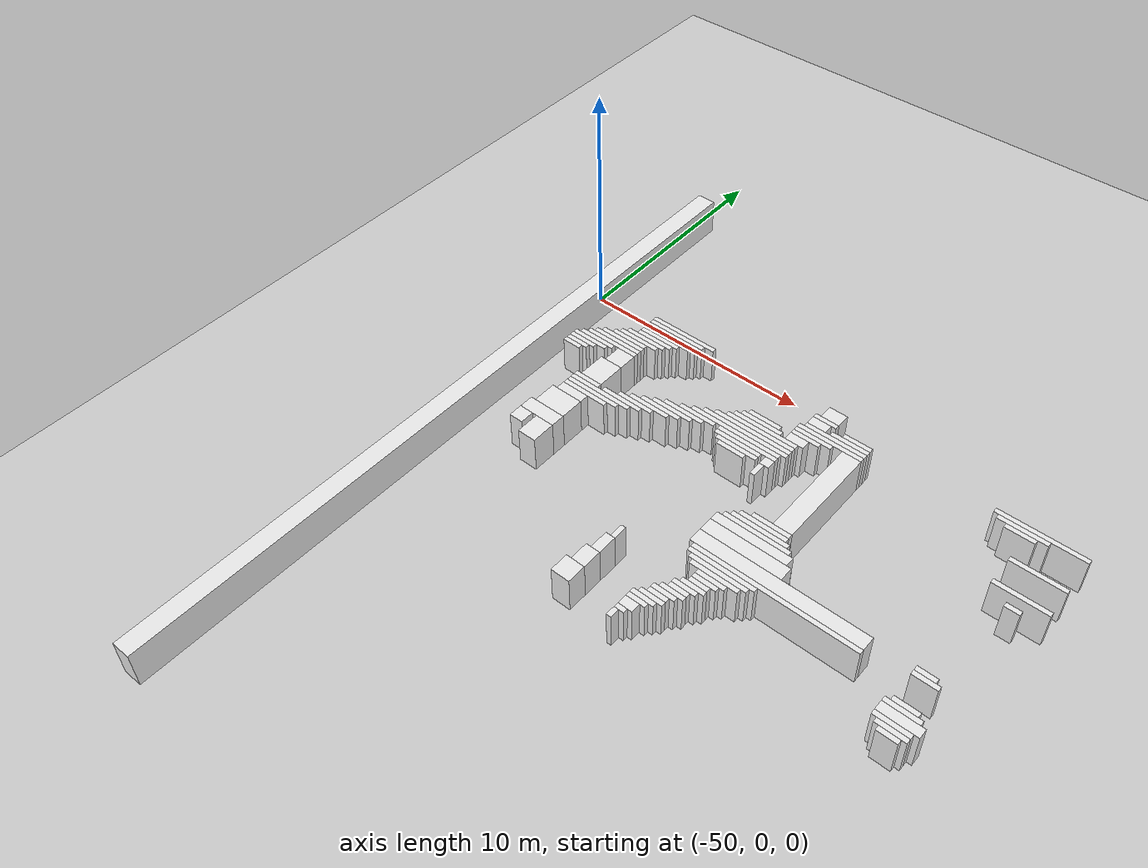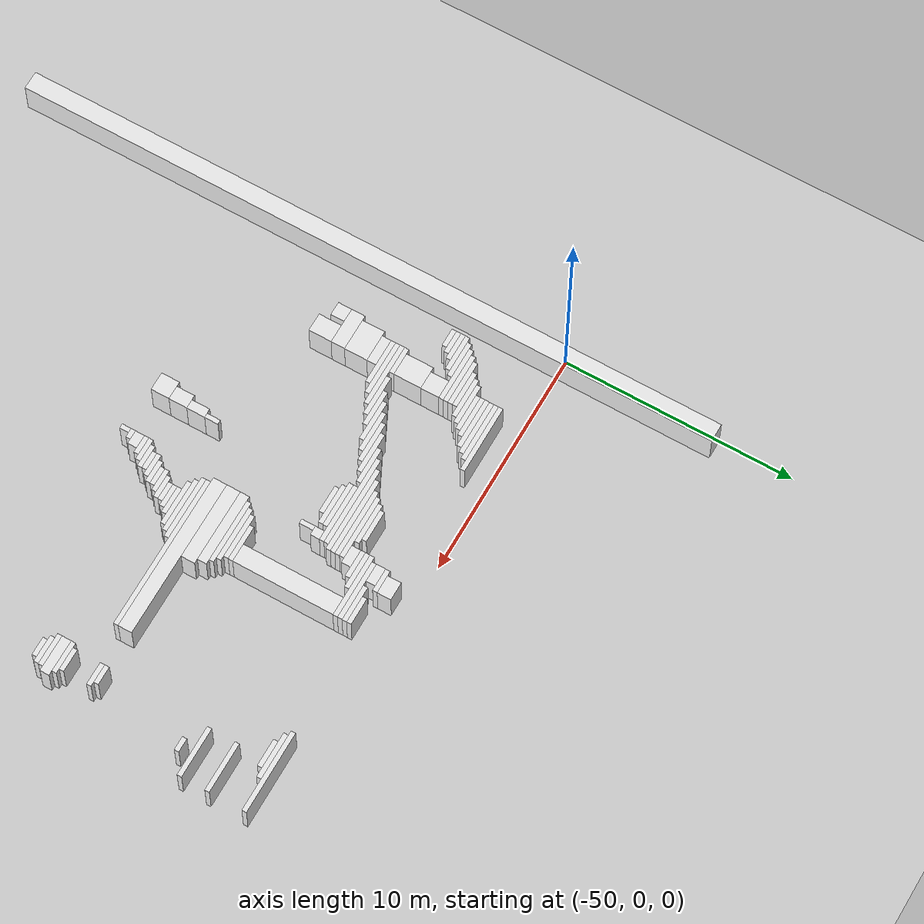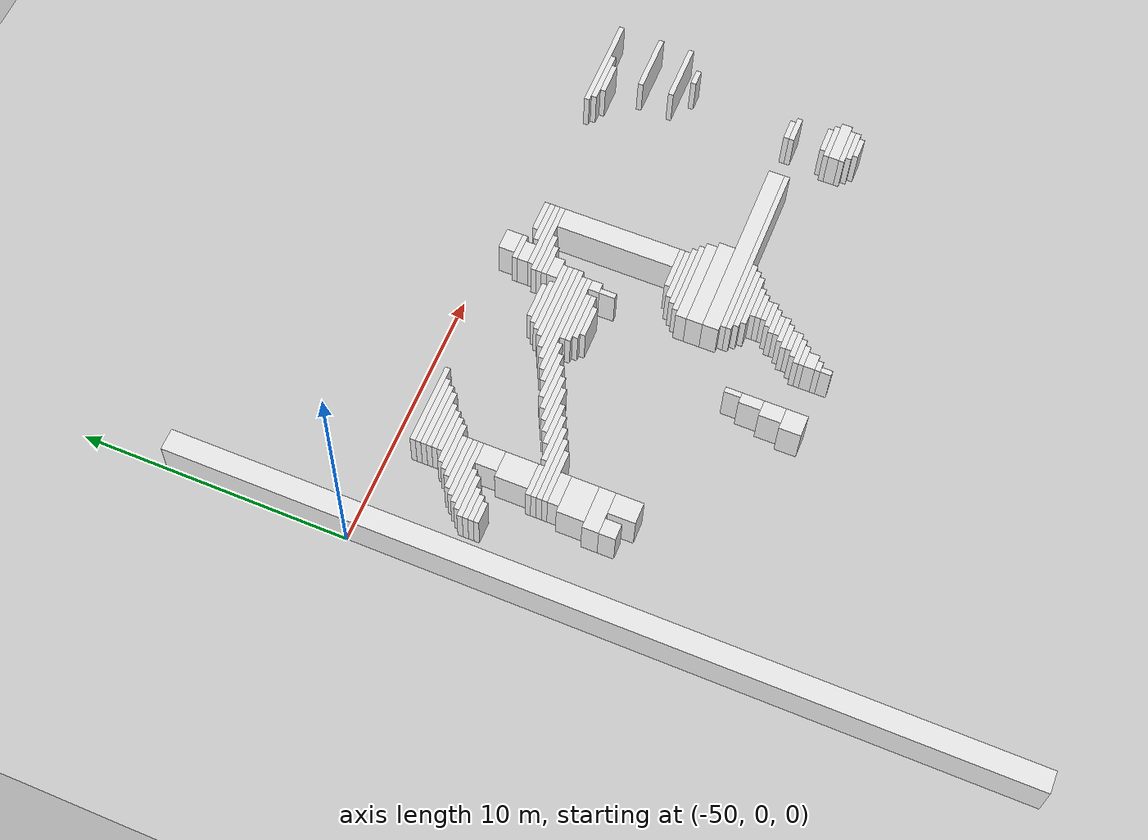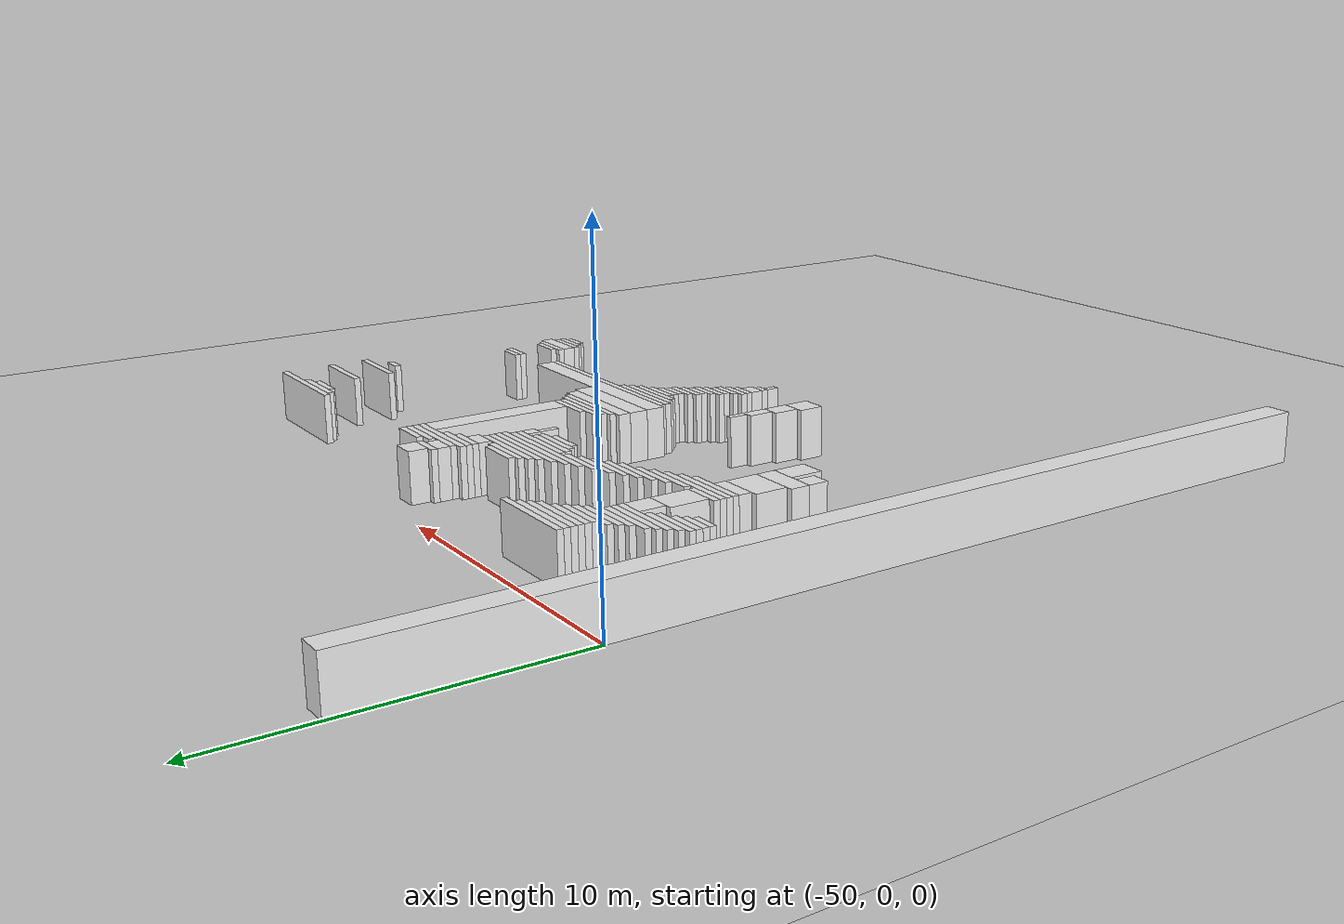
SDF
<sdf version="1.7">
 <world name="default">
  <model name="ground_plane">
   <static>1</static>
   <link name="link">
    <collision name="collision">
     <geometry><plane><normal>0 0 1</normal><size>120 120</size></plane></geometry>
    </collision>
    <visual name="visual">
     <geometry><plane><normal>0 0 1</normal><size>120 120</size></plane></geometry>
     <material>
      <script><uri>file://media/materials/scripts/gazebo.material</uri><name>Gazebo/Grey</name></script>
     </material>
    </visual>
   </link>
  </model>
  <model name="random_complex_01_model">
   <static>1</static>
   <link name="obs_1876">
    <pose>-44.9000 -0.9000 0.8000 0 0 0</pose>
    <collision name="obs_1876_col"><geometry><box><size>3.0000 0.2000 1.6000</size></box></geometry></collision>
    <visual name="obs_1876_vis">
     <geometry><box><size>3.0000 0.2000 1.6000</size></box></geometry>
     <material>
      <script><uri>file://media/materials/scripts/gazebo.material</uri><name>Gazebo/White</name></script>
     </material>
    </visual>
   </link>
   <link name="obs_1881">
    <pose>-37.8000 -0.9000 0.8000 0 0 0</pose>
    <collision name="obs_1881_col"><geometry><box><size>0.8000 0.6000 1.6000</size></box></geometry></collision>
    <visual name="obs_1881_vis">
     <geometry><box><size>0.8000 0.6000 1.6000</size></box></geometry>
     <material>
      <script><uri>file://media/materials/scripts/gazebo.material</uri><name>Gazebo/White</name></script>
     </material>
    </visual>
   </link>
   <link name="obs_1884">
    <pose>-45.1000 -1.1000 0.8000 0 0 0</pose>
    <collision name="obs_1884_col"><geometry><box><size>2.6000 0.2000 1.6000</size></box></geometry></collision>
    <visual name="obs_1884_vis">
     <geometry><box><size>2.6000 0.2000 1.6000</size></box></geometry>
     <material>
      <script><uri>file://media/materials/scripts/gazebo.material</uri><name>Gazebo/White</name></script>
     </material>
    </visual>
   </link>
   <link name="obs_1885">
    <pose>-29.2000 -1.1000 0.8000 0 0 0</pose>
    <collision name="obs_1885_col"><geometry><box><size>3.6000 0.2000 1.6000</size></box></geometry></collision>
    <visual name="obs_1885_vis">
     <geometry><box><size>3.6000 0.2000 1.6000</size></box></geometry>
     <material>
      <script><uri>file://media/materials/scripts/gazebo.material</uri><name>Gazebo/White</name></script>
     </material>
    </visual>
   </link>
   <link name="obs_1889">
    <pose>-45.2000 -1.3000 0.8000 0 0 0</pose>
    <collision name="obs_1889_col"><geometry><box><size>2.4000 0.2000 1.6000</size></box></geometry></collision>
    <visual name="obs_1889_vis">
     <geometry><box><size>2.4000 0.2000 1.6000</size></box></geometry>
     <material>
      <script><uri>file://media/materials/scripts/gazebo.material</uri><name>Gazebo/White</name></script>
     </material>
    </visual>
   </link>
   <link name="obs_1890">
    <pose>-37.9000 -1.3000 0.8000 0 0 0</pose>
    <collision name="obs_1890_col"><geometry><box><size>1.0000 0.2000 1.6000</size></box></geometry></collision>
    <visual name="obs_1890_vis">
     <geometry><box><size>1.0000 0.2000 1.6000</size></box></geometry>
     <material>
      <script><uri>file://media/materials/scripts/gazebo.material</uri><name>Gazebo/White</name></script>
     </material>
    </visual>
   </link>
   <link name="obs_1891">
    <pose>-29.8000 -1.3000 0.8000 0 0 0</pose>
    <collision name="obs_1891_col"><geometry><box><size>2.0000 0.2000 1.6000</size></box></geometry></collision>
    <visual name="obs_1891_vis">
     <geometry><box><size>2.0000 0.2000 1.6000</size></box></geometry>
     <material>
      <script><uri>file://media/materials/scripts/gazebo.material</uri><name>Gazebo/White</name></script>
     </material>
    </visual>
   </link>
   <link name="obs_1896">
    <pose>-45.3000 -1.5000 0.8000 0 0 0</pose>
    <collision name="obs_1896_col"><geometry><box><size>2.2000 0.2000 1.6000</size></box></geometry></collision>
    <visual name="obs_1896_vis">
     <geometry><box><size>2.2000 0.2000 1.6000</size></box></geometry>
     <material>
      <script><uri>file://media/materials/scripts/gazebo.material</uri><name>Gazebo/White</name></script>
     </material>
    </visual>
   </link>
   <link name="obs_1897">
    <pose>-36.4000 -1.5000 0.8000 0 0 0</pose>
    <collision name="obs_1897_col"><geometry><box><size>1.2000 0.2000 1.6000</size></box></geometry></collision>
    <visual name="obs_1897_vis">
     <geometry><box><size>1.2000 0.2000 1.6000</size></box></geometry>
     <material>
      <script><uri>file://media/materials/scripts/gazebo.material</uri><name>Gazebo/White</name></script>
     </material>
    </visual>
   </link>
   <link name="obs_1898">
    <pose>-29.8000 -1.5000 0.8000 0 0 0</pose>
    <collision name="obs_1898_col"><geometry><box><size>1.2000 0.2000 1.6000</size></box></geometry></collision>
    <visual name="obs_1898_vis">
     <geometry><box><size>1.2000 0.2000 1.6000</size></box></geometry>
     <material>
      <script><uri>file://media/materials/scripts/gazebo.material</uri><name>Gazebo/White</name></script>
     </material>
    </visual>
   </link>
   <link name="obs_1901">
    <pose>-38.0000 -1.6000 0.8000 0 0 0</pose>
    <collision name="obs_1901_col"><geometry><box><size>0.8000 0.4000 1.6000</size></box></geometry></collision>
    <visual name="obs_1901_vis">
     <geometry><box><size>0.8000 0.4000 1.6000</size></box></geometry>
     <material>
      <script><uri>file://media/materials/scripts/gazebo.material</uri><name>Gazebo/White</name></script>
     </material>
    </visual>
   </link>
   <link name="obs_1903">
    <pose>-45.5000 -1.7000 0.8000 0 0 0</pose>
    <collision name="obs_1903_col"><geometry><box><size>1.8000 0.2000 1.6000</size></box></geometry></collision>
    <visual name="obs_1903_vis">
     <geometry><box><size>1.8000 0.2000 1.6000</size></box></geometry>
     <material>
      <script><uri>file://media/materials/scripts/gazebo.material</uri><name>Gazebo/White</name></script>
     </material>
    </visual>
   </link>
   <link name="obs_1904">
    <pose>-36.6000 -1.7000 0.8000 0 0 0</pose>
    <collision name="obs_1904_col"><geometry><box><size>1.6000 0.2000 1.6000</size></box></geometry></collision>
    <visual name="obs_1904_vis">
     <geometry><box><size>1.6000 0.2000 1.6000</size></box></geometry>
     <material>
      <script><uri>file://media/materials/scripts/gazebo.material</uri><name>Gazebo/White</name></script>
     </material>
    </visual>
   </link>
   <link name="obs_1908">
    <pose>-45.6000 -1.9000 0.8000 0 0 0</pose>
    <collision name="obs_1908_col"><geometry><box><size>1.6000 0.2000 1.6000</size></box></geometry></collision>
    <visual name="obs_1908_vis">
     <geometry><box><size>1.6000 0.2000 1.6000</size></box></geometry>
     <material>
      <script><uri>file://media/materials/scripts/gazebo.material</uri><name>Gazebo/White</name></script>
     </material>
    </visual>
   </link>
   <link name="obs_1909">
    <pose>-37.1000 -1.9000 0.8000 0 0 0</pose>
    <collision name="obs_1909_col"><geometry><box><size>2.6000 0.2000 1.6000</size></box></geometry></collision>
    <visual name="obs_1909_vis">
     <geometry><box><size>2.6000 0.2000 1.6000</size></box></geometry>
     <material>
      <script><uri>file://media/materials/scripts/gazebo.material</uri><name>Gazebo/White</name></script>
     </material>
    </visual>
   </link>
   <link name="obs_1914">
    <pose>-45.9000 -2.1000 0.8000 0 0 0</pose>
    <collision name="obs_1914_col"><geometry><box><size>1.8000 0.2000 1.6000</size></box></geometry></collision>
    <visual name="obs_1914_vis">
     <geometry><box><size>1.8000 0.2000 1.6000</size></box></geometry>
     <material>
      <script><uri>file://media/materials/scripts/gazebo.material</uri><name>Gazebo/White</name></script>
     </material>
    </visual>
   </link>
   <link name="obs_1915">
    <pose>-37.2000 -2.1000 0.8000 0 0 0</pose>
    <collision name="obs_1915_col"><geometry><box><size>2.8000 0.2000 1.6000</size></box></geometry></collision>
    <visual name="obs_1915_vis">
     <geometry><box><size>2.8000 0.2000 1.6000</size></box></geometry>
     <material>
      <script><uri>file://media/materials/scripts/gazebo.material</uri><name>Gazebo/White</name></script>
     </material>
    </visual>
   </link>
   <link name="obs_1921">
    <pose>-46.1000 -2.3000 0.8000 0 0 0</pose>
    <collision name="obs_1921_col"><geometry><box><size>1.8000 0.2000 1.6000</size></box></geometry></collision>
    <visual name="obs_1921_vis">
     <geometry><box><size>1.8000 0.2000 1.6000</size></box></geometry>
     <material>
      <script><uri>file://media/materials/scripts/gazebo.material</uri><name>Gazebo/White</name></script>
     </material>
    </visual>
   </link>
   <link name="obs_1922">
    <pose>-37.8000 -2.3000 0.8000 0 0 0</pose>
    <collision name="obs_1922_col"><geometry><box><size>1.6000 0.2000 1.6000</size></box></geometry></collision>
    <visual name="obs_1922_vis">
     <geometry><box><size>1.6000 0.2000 1.6000</size></box></geometry>
     <material>
      <script><uri>file://media/materials/scripts/gazebo.material</uri><name>Gazebo/White</name></script>
     </material>
    </visual>
   </link>
   <link name="obs_1930">
    <pose>-46.4000 -2.5000 0.8000 0 0 0</pose>
    <collision name="obs_1930_col"><geometry><box><size>1.6000 0.2000 1.6000</size></box></geometry></collision>
    <visual name="obs_1930_vis">
     <geometry><box><size>1.6000 0.2000 1.6000</size></box></geometry>
     <material>
      <script><uri>file://media/materials/scripts/gazebo.material</uri><name>Gazebo/White</name></script>
     </material>
    </visual>
   </link>
   <link name="obs_1931">
    <pose>-38.0000 -2.5000 0.8000 0 0 0</pose>
    <collision name="obs_1931_col"><geometry><box><size>1.2000 0.2000 1.6000</size></box></geometry></collision>
    <visual name="obs_1931_vis">
     <geometry><box><size>1.2000 0.2000 1.6000</size></box></geometry>
     <material>
      <script><uri>file://media/materials/scripts/gazebo.material</uri><name>Gazebo/White</name></script>
     </material>
    </visual>
   </link>
   <link name="obs_1937">
    <pose>-46.6000 -2.7000 0.8000 0 0 0</pose>
    <collision name="obs_1937_col"><geometry><box><size>2.0000 0.2000 1.6000</size></box></geometry></collision>
    <visual name="obs_1937_vis">
     <geometry><box><size>2.0000 0.2000 1.6000</size></box></geometry>
     <material>
      <script><uri>file://media/materials/scripts/gazebo.material</uri><name>Gazebo/White</name></script>
     </material>
    </visual>
   </link>
   <link name="obs_1938">
    <pose>-39.7000 -2.7000 0.8000 0 0 0</pose>
    <collision name="obs_1938_col"><geometry><box><size>1.4000 0.2000 1.6000</size></box></geometry></collision>
    <visual name="obs_1938_vis">
     <geometry><box><size>1.4000 0.2000 1.6000</size></box></geometry>
     <material>
      <script><uri>file://media/materials/scripts/gazebo.material</uri><name>Gazebo/White</name></script>
     </material>
    </visual>
   </link>
   <link name="obs_1939">
    <pose>-28.5000 -2.7000 0.8000 0 0 0</pose>
    <collision name="obs_1939_col"><geometry><box><size>2.2000 0.2000 1.6000</size></box></geometry></collision>
    <visual name="obs_1939_vis">
     <geometry><box><size>2.2000 0.2000 1.6000</size></box></geometry>
     <material>
      <script><uri>file://media/materials/scripts/gazebo.material</uri><name>Gazebo/White</name></script>
     </material>
    </visual>
   </link>
   <link name="obs_1945">
    <pose>-38.2000 -2.8000 0.8000 0 0 0</pose>
    <collision name="obs_1945_col"><geometry><box><size>0.8000 0.4000 1.6000</size></box></geometry></collision>
    <visual name="obs_1945_vis">
     <geometry><box><size>0.8000 0.4000 1.6000</size></box></geometry>
     <material>
      <script><uri>file://media/materials/scripts/gazebo.material</uri><name>Gazebo/White</name></script>
     </material>
    </visual>
   </link>
   <link name="obs_1947">
    <pose>-46.7000 -2.9000 0.8000 0 0 0</pose>
    <collision name="obs_1947_col"><geometry><box><size>2.2000 0.2000 1.6000</size></box></geometry></collision>
    <visual name="obs_1947_vis">
     <geometry><box><size>2.2000 0.2000 1.6000</size></box></geometry>
     <material>
      <script><uri>file://media/materials/scripts/gazebo.material</uri><name>Gazebo/White</name></script>
     </material>
    </visual>
   </link>
   <link name="obs_1948">
    <pose>-39.7000 -2.9000 0.8000 0 0 0</pose>
    <collision name="obs_1948_col"><geometry><box><size>1.8000 0.2000 1.6000</size></box></geometry></collision>
    <visual name="obs_1948_vis">
     <geometry><box><size>1.8000 0.2000 1.6000</size></box></geometry>
     <material>
      <script><uri>file://media/materials/scripts/gazebo.material</uri><name>Gazebo/White</name></script>
     </material>
    </visual>
   </link>
   <link name="obs_1956">
    <pose>-46.8000 -3.1000 0.8000 0 0 0</pose>
    <collision name="obs_1956_col"><geometry><box><size>2.4000 0.2000 1.6000</size></box></geometry></collision>
    <visual name="obs_1956_vis">
     <geometry><box><size>2.4000 0.2000 1.6000</size></box></geometry>
     <material>
      <script><uri>file://media/materials/scripts/gazebo.material</uri><name>Gazebo/White</name></script>
     </material>
    </visual>
   </link>
   <link name="obs_1957">
    <pose>-39.4000 -3.1000 0.8000 0 0 0</pose>
    <collision name="obs_1957_col"><geometry><box><size>2.8000 0.2000 1.6000</size></box></geometry></collision>
    <visual name="obs_1957_vis">
     <geometry><box><size>2.8000 0.2000 1.6000</size></box></geometry>
     <material>
      <script><uri>file://media/materials/scripts/gazebo.material</uri><name>Gazebo/White</name></script>
     </material>
    </visual>
   </link>
   <link name="obs_1962">
    <pose>-47.4000 -3.3000 0.8000 0 0 0</pose>
    <collision name="obs_1962_col"><geometry><box><size>1.6000 0.2000 1.6000</size></box></geometry></collision>
    <visual name="obs_1962_vis">
     <geometry><box><size>1.6000 0.2000 1.6000</size></box></geometry>
     <material>
      <script><uri>file://media/materials/scripts/gazebo.material</uri><name>Gazebo/White</name></script>
     </material>
    </visual>
   </link>
   <link name="obs_1963">
    <pose>-39.5000 -3.3000 0.8000 0 0 0</pose>
    <collision name="obs_1963_col"><geometry><box><size>3.0000 0.2000 1.6000</size></box></geometry></collision>
    <visual name="obs_1963_vis">
     <geometry><box><size>3.0000 0.2000 1.6000</size></box></geometry>
     <material>
      <script><uri>file://media/materials/scripts/gazebo.material</uri><name>Gazebo/White</name></script>
     </material>
    </visual>
   </link>
   <link name="obs_1970">
    <pose>-47.6000 -3.5000 0.8000 0 0 0</pose>
    <collision name="obs_1970_col"><geometry><box><size>1.6000 0.2000 1.6000</size></box></geometry></collision>
    <visual name="obs_1970_vis">
     <geometry><box><size>1.6000 0.2000 1.6000</size></box></geometry>
     <material>
      <script><uri>file://media/materials/scripts/gazebo.material</uri><name>Gazebo/White</name></script>
     </material>
    </visual>
   </link>
   <link name="obs_1971">
    <pose>-39.7000 -3.5000 0.8000 0 0 0</pose>
    <collision name="obs_1971_col"><geometry><box><size>3.4000 0.2000 1.6000</size></box></geometry></collision>
    <visual name="obs_1971_vis">
     <geometry><box><size>3.4000 0.2000 1.6000</size></box></geometry>
     <material>
      <script><uri>file://media/materials/scripts/gazebo.material</uri><name>Gazebo/White</name></script>
     </material>
    </visual>
   </link>
   <link name="obs_1977">
    <pose>-47.8000 -3.7000 0.8000 0 0 0</pose>
    <collision name="obs_1977_col"><geometry><box><size>1.2000 0.2000 1.6000</size></box></geometry></collision>
    <visual name="obs_1977_vis">
     <geometry><box><size>1.2000 0.2000 1.6000</size></box></geometry>
     <material>
      <script><uri>file://media/materials/scripts/gazebo.material</uri><name>Gazebo/White</name></script>
     </material>
    </visual>
   </link>
   <link name="obs_1978">
    <pose>-39.9000 -3.7000 0.8000 0 0 0</pose>
    <collision name="obs_1978_col"><geometry><box><size>3.8000 0.2000 1.6000</size></box></geometry></collision>
    <visual name="obs_1978_vis">
     <geometry><box><size>3.8000 0.2000 1.6000</size></box></geometry>
     <material>
      <script><uri>file://media/materials/scripts/gazebo.material</uri><name>Gazebo/White</name></script>
     </material>
    </visual>
   </link>
   <link name="obs_1984">
    <pose>-46.0000 -3.6000 0.8000 0 0 0</pose>
    <collision name="obs_1984_col"><geometry><box><size>0.8000 0.8000 1.6000</size></box></geometry></collision>
    <visual name="obs_1984_vis">
     <geometry><box><size>0.8000 0.8000 1.6000</size></box></geometry>
     <material>
      <script><uri>file://media/materials/scripts/gazebo.material</uri><name>Gazebo/White</name></script>
     </material>
    </visual>
   </link>
   <link name="obs_1986">
    <pose>-47.9000 -3.9000 0.8000 0 0 0</pose>
    <collision name="obs_1986_col"><geometry><box><size>1.0000 0.2000 1.6000</size></box></geometry></collision>
    <visual name="obs_1986_vis">
     <geometry><box><size>1.0000 0.2000 1.6000</size></box></geometry>
     <material>
      <script><uri>file://media/materials/scripts/gazebo.material</uri><name>Gazebo/White</name></script>
     </material>
    </visual>
   </link>
   <link name="obs_1987">
    <pose>-40.2000 -3.9000 0.8000 0 0 0</pose>
    <collision name="obs_1987_col"><geometry><box><size>4.0000 0.2000 1.6000</size></box></geometry></collision>
    <visual name="obs_1987_vis">
     <geometry><box><size>4.0000 0.2000 1.6000</size></box></geometry>
     <material>
      <script><uri>file://media/materials/scripts/gazebo.material</uri><name>Gazebo/White</name></script>
     </material>
    </visual>
   </link>
   <link name="obs_1988">
    <pose>-28.5000 -3.9000 0.8000 0 0 0</pose>
    <collision name="obs_1988_col"><geometry><box><size>2.2000 0.2000 1.6000</size></box></geometry></collision>
    <visual name="obs_1988_vis">
     <geometry><box><size>2.2000 0.2000 1.6000</size></box></geometry>
     <material>
      <script><uri>file://media/materials/scripts/gazebo.material</uri><name>Gazebo/White</name></script>
     </material>
    </visual>
   </link>
   <link name="obs_1994">
    <pose>-48.0000 -4.1000 0.8000 0 0 0</pose>
    <collision name="obs_1994_col"><geometry><box><size>0.8000 0.2000 1.6000</size></box></geometry></collision>
    <visual name="obs_1994_vis">
     <geometry><box><size>0.8000 0.2000 1.6000</size></box></geometry>
     <material>
      <script><uri>file://media/materials/scripts/gazebo.material</uri><name>Gazebo/White</name></script>
     </material>
    </visual>
   </link>
   <link name="obs_1995">
    <pose>-41.8000 -4.1000 0.8000 0 0 0</pose>
    <collision name="obs_1995_col"><geometry><box><size>1.6000 0.2000 1.6000</size></box></geometry></collision>
    <visual name="obs_1995_vis">
     <geometry><box><size>1.6000 0.2000 1.6000</size></box></geometry>
     <material>
      <script><uri>file://media/materials/scripts/gazebo.material</uri><name>Gazebo/White</name></script>
     </material>
    </visual>
   </link>
   <link name="obs_1996">
    <pose>-39.5000 -4.1000 0.8000 0 0 0</pose>
    <collision name="obs_1996_col"><geometry><box><size>2.6000 0.2000 1.6000</size></box></geometry></collision>
    <visual name="obs_1996_vis">
     <geometry><box><size>2.6000 0.2000 1.6000</size></box></geometry>
     <material>
      <script><uri>file://media/materials/scripts/gazebo.material</uri><name>Gazebo/White</name></script>
     </material>
    </visual>
   </link>
   <link name="obs_2006">
    <pose>-42.3000 -4.3000 0.8000 0 0 0</pose>
    <collision name="obs_2006_col"><geometry><box><size>1.8000 0.2000 1.6000</size></box></geometry></collision>
    <visual name="obs_2006_vis">
     <geometry><box><size>1.8000 0.2000 1.6000</size></box></geometry>
     <material>
      <script><uri>file://media/materials/scripts/gazebo.material</uri><name>Gazebo/White</name></script>
     </material>
    </visual>
   </link>
   <link name="obs_2007">
    <pose>-39.8000 -4.3000 0.8000 0 0 0</pose>
    <collision name="obs_2007_col"><geometry><box><size>2.0000 0.2000 1.6000</size></box></geometry></collision>
    <visual name="obs_2007_vis">
     <geometry><box><size>2.0000 0.2000 1.6000</size></box></geometry>
     <material>
      <script><uri>file://media/materials/scripts/gazebo.material</uri><name>Gazebo/White</name></script>
     </material>
    </visual>
   </link>
   <link name="obs_2015">
    <pose>-38.4000 -4.4000 0.8000 0 0 0</pose>
    <collision name="obs_2015_col"><geometry><box><size>0.4000 0.4000 1.6000</size></box></geometry></collision>
    <visual name="obs_2015_vis">
     <geometry><box><size>0.4000 0.4000 1.6000</size></box></geometry>
     <material>
      <script><uri>file://media/materials/scripts/gazebo.material</uri><name>Gazebo/White</name></script>
     </material>
    </visual>
   </link>
   <link name="obs_2016">
    <pose>-42.7000 -4.5000 0.8000 0 0 0</pose>
    <collision name="obs_2016_col"><geometry><box><size>1.8000 0.2000 1.6000</size></box></geometry></collision>
    <visual name="obs_2016_vis">
     <geometry><box><size>1.8000 0.2000 1.6000</size></box></geometry>
     <material>
      <script><uri>file://media/materials/scripts/gazebo.material</uri><name>Gazebo/White</name></script>
     </material>
    </visual>
   </link>
   <link name="obs_2017">
    <pose>-39.7000 -4.5000 0.8000 0 0 0</pose>
    <collision name="obs_2017_col"><geometry><box><size>1.8000 0.2000 1.6000</size></box></geometry></collision>
    <visual name="obs_2017_vis">
     <geometry><box><size>1.8000 0.2000 1.6000</size></box></geometry>
     <material>
      <script><uri>file://media/materials/scripts/gazebo.material</uri><name>Gazebo/White</name></script>
     </material>
    </visual>
   </link>
   <link name="obs_2018">
    <pose>-28.5000 -4.5000 0.8000 0 0 0</pose>
    <collision name="obs_2018_col"><geometry><box><size>0.6000 0.2000 1.6000</size></box></geometry></collision>
    <visual name="obs_2018_vis">
     <geometry><box><size>0.6000 0.2000 1.6000</size></box></geometry>
     <material>
      <script><uri>file://media/materials/scripts/gazebo.material</uri><name>Gazebo/White</name></script>
     </material>
    </visual>
   </link>
   <link name="obs_2028">
    <pose>-43.1000 -4.7000 0.8000 0 0 0</pose>
    <collision name="obs_2028_col"><geometry><box><size>1.8000 0.2000 1.6000</size></box></geometry></collision>
    <visual name="obs_2028_vis">
     <geometry><box><size>1.8000 0.2000 1.6000</size></box></geometry>
     <material>
      <script><uri>file://media/materials/scripts/gazebo.material</uri><name>Gazebo/White</name></script>
     </material>
    </visual>
   </link>
   <link name="obs_2029">
    <pose>-39.8000 -4.7000 0.8000 0 0 0</pose>
    <collision name="obs_2029_col"><geometry><box><size>1.2000 0.2000 1.6000</size></box></geometry></collision>
    <visual name="obs_2029_vis">
     <geometry><box><size>1.2000 0.2000 1.6000</size></box></geometry>
     <material>
      <script><uri>file://media/materials/scripts/gazebo.material</uri><name>Gazebo/White</name></script>
     </material>
    </visual>
   </link>
   <link name="obs_2036">
    <pose>-43.5000 -4.9000 0.8000 0 0 0</pose>
    <collision name="obs_2036_col"><geometry><box><size>1.8000 0.2000 1.6000</size></box></geometry></collision>
    <visual name="obs_2036_vis">
     <geometry><box><size>1.8000 0.2000 1.6000</size></box></geometry>
     <material>
      <script><uri>file://media/materials/scripts/gazebo.material</uri><name>Gazebo/White</name></script>
     </material>
    </visual>
   </link>
   <link name="obs_2042">
    <pose>-46.1000 -4.6000 0.8000 0 0 0</pose>
    <collision name="obs_2042_col"><geometry><box><size>1.0000 1.2000 1.6000</size></box></geometry></collision>
    <visual name="obs_2042_vis">
     <geometry><box><size>1.0000 1.2000 1.6000</size></box></geometry>
     <material>
      <script><uri>file://media/materials/scripts/gazebo.material</uri><name>Gazebo/White</name></script>
     </material>
    </visual>
   </link>
   <link name="obs_2043">
    <pose>-38.5000 -4.9000 0.8000 0 0 0</pose>
    <collision name="obs_2043_col"><geometry><box><size>0.2000 0.6000 1.6000</size></box></geometry></collision>
    <visual name="obs_2043_vis">
     <geometry><box><size>0.2000 0.6000 1.6000</size></box></geometry>
     <material>
      <script><uri>file://media/materials/scripts/gazebo.material</uri><name>Gazebo/White</name></script>
     </material>
    </visual>
   </link>
   <link name="obs_2045">
    <pose>-44.0000 -5.1000 0.8000 0 0 0</pose>
    <collision name="obs_2045_col"><geometry><box><size>1.6000 0.2000 1.6000</size></box></geometry></collision>
    <visual name="obs_2045_vis">
     <geometry><box><size>1.6000 0.2000 1.6000</size></box></geometry>
     <material>
      <script><uri>file://media/materials/scripts/gazebo.material</uri><name>Gazebo/White</name></script>
     </material>
    </visual>
   </link>
   <link name="obs_2050">
    <pose>-46.2000 -5.3000 0.8000 0 0 0</pose>
    <collision name="obs_2050_col"><geometry><box><size>1.2000 0.2000 1.6000</size></box></geometry></collision>
    <visual name="obs_2050_vis">
     <geometry><box><size>1.2000 0.2000 1.6000</size></box></geometry>
     <material>
      <script><uri>file://media/materials/scripts/gazebo.material</uri><name>Gazebo/White</name></script>
     </material>
    </visual>
   </link>
   <link name="obs_2051">
    <pose>-44.5000 -5.3000 0.8000 0 0 0</pose>
    <collision name="obs_2051_col"><geometry><box><size>1.8000 0.2000 1.6000</size></box></geometry></collision>
    <visual name="obs_2051_vis">
     <geometry><box><size>1.8000 0.2000 1.6000</size></box></geometry>
     <material>
      <script><uri>file://media/materials/scripts/gazebo.material</uri><name>Gazebo/White</name></script>
     </material>
    </visual>
   </link>
   <link name="obs_2057">
    <pose>-45.4000 -5.5000 0.8000 0 0 0</pose>
    <collision name="obs_2057_col"><geometry><box><size>2.8000 0.2000 1.6000</size></box></geometry></collision>
    <visual name="obs_2057_vis">
     <geometry><box><size>2.8000 0.2000 1.6000</size></box></geometry>
     <material>
      <script><uri>file://media/materials/scripts/gazebo.material</uri><name>Gazebo/White</name></script>
     </material>
    </visual>
   </link>
   <link name="obs_2064">
    <pose>-45.6000 -5.7000 0.8000 0 0 0</pose>
    <collision name="obs_2064_col"><geometry><box><size>2.4000 0.2000 1.6000</size></box></geometry></collision>
    <visual name="obs_2064_vis">
     <geometry><box><size>2.4000 0.2000 1.6000</size></box></geometry>
     <material>
      <script><uri>file://media/materials/scripts/gazebo.material</uri><name>Gazebo/White</name></script>
     </material>
    </visual>
   </link>
   <link name="obs_2071">
    <pose>-45.8000 -5.9000 0.8000 0 0 0</pose>
    <collision name="obs_2071_col"><geometry><box><size>2.0000 0.2000 1.6000</size></box></geometry></collision>
    <visual name="obs_2071_vis">
     <geometry><box><size>2.0000 0.2000 1.6000</size></box></geometry>
     <material>
      <script><uri>file://media/materials/scripts/gazebo.material</uri><name>Gazebo/White</name></script>
     </material>
    </visual>
   </link>
   <link name="obs_2085">
    <pose>-46.2000 -6.2000 0.8000 0 0 0</pose>
    <collision name="obs_2085_col"><geometry><box><size>1.2000 0.4000 1.6000</size></box></geometry></collision>
    <visual name="obs_2085_vis">
     <geometry><box><size>1.2000 0.4000 1.6000</size></box></geometry>
     <material>
      <script><uri>file://media/materials/scripts/gazebo.material</uri><name>Gazebo/White</name></script>
     </material>
    </visual>
   </link>
   <link name="obs_2091">
    <pose>-36.2000 -4.4000 0.8000 0 0 0</pose>
    <collision name="obs_2091_col"><geometry><box><size>0.8000 4.4000 1.6000</size></box></geometry></collision>
    <visual name="obs_2091_vis">
     <geometry><box><size>0.8000 4.4000 1.6000</size></box></geometry>
     <material>
      <script><uri>file://media/materials/scripts/gazebo.material</uri><name>Gazebo/White</name></script>
     </material>
    </visual>
   </link>
   <link name="obs_2101">
    <pose>-36.6000 -6.7000 0.8000 0 0 0</pose>
    <collision name="obs_2101_col"><geometry><box><size>1.6000 0.2000 1.6000</size></box></geometry></collision>
    <visual name="obs_2101_vis">
     <geometry><box><size>1.6000 0.2000 1.6000</size></box></geometry>
     <material>
      <script><uri>file://media/materials/scripts/gazebo.material</uri><name>Gazebo/White</name></script>
     </material>
    </visual>
   </link>
   <link name="obs_2109">
    <pose>-36.8000 -6.9000 0.8000 0 0 0</pose>
    <collision name="obs_2109_col"><geometry><box><size>2.0000 0.2000 1.6000</size></box></geometry></collision>
    <visual name="obs_2109_vis">
     <geometry><box><size>2.0000 0.2000 1.6000</size></box></geometry>
     <material>
      <script><uri>file://media/materials/scripts/gazebo.material</uri><name>Gazebo/White</name></script>
     </material>
    </visual>
   </link>
   <link name="obs_2119">
    <pose>-36.8000 -7.1000 0.8000 0 0 0</pose>
    <collision name="obs_2119_col"><geometry><box><size>2.4000 0.2000 1.6000</size></box></geometry></collision>
    <visual name="obs_2119_vis">
     <geometry><box><size>2.4000 0.2000 1.6000</size></box></geometry>
     <material>
      <script><uri>file://media/materials/scripts/gazebo.material</uri><name>Gazebo/White</name></script>
     </material>
    </visual>
   </link>
   <link name="obs_2126">
    <pose>-46.3000 -6.9000 0.8000 0 0 0</pose>
    <collision name="obs_2126_col"><geometry><box><size>1.4000 1.0000 1.6000</size></box></geometry></collision>
    <visual name="obs_2126_vis">
     <geometry><box><size>1.4000 1.0000 1.6000</size></box></geometry>
     <material>
      <script><uri>file://media/materials/scripts/gazebo.material</uri><name>Gazebo/White</name></script>
     </material>
    </visual>
   </link>
   <link name="obs_2128">
    <pose>-36.8000 -7.3000 0.8000 0 0 0</pose>
    <collision name="obs_2128_col"><geometry><box><size>2.8000 0.2000 1.6000</size></box></geometry></collision>
    <visual name="obs_2128_vis">
     <geometry><box><size>2.8000 0.2000 1.6000</size></box></geometry>
     <material>
      <script><uri>file://media/materials/scripts/gazebo.material</uri><name>Gazebo/White</name></script>
     </material>
    </visual>
   </link>
   <link name="obs_2143">
    <pose>-36.8000 -7.6000 0.8000 0 0 0</pose>
    <collision name="obs_2143_col"><geometry><box><size>3.2000 0.4000 1.6000</size></box></geometry></collision>
    <visual name="obs_2143_vis">
     <geometry><box><size>3.2000 0.4000 1.6000</size></box></geometry>
     <material>
      <script><uri>file://media/materials/scripts/gazebo.material</uri><name>Gazebo/White</name></script>
     </material>
    </visual>
   </link>
   <link name="obs_2152">
    <pose>-46.4000 -7.7000 0.8000 0 0 0</pose>
    <collision name="obs_2152_col"><geometry><box><size>1.6000 0.6000 1.6000</size></box></geometry></collision>
    <visual name="obs_2152_vis">
     <geometry><box><size>1.6000 0.6000 1.6000</size></box></geometry>
     <material>
      <script><uri>file://media/materials/scripts/gazebo.material</uri><name>Gazebo/White</name></script>
     </material>
    </visual>
   </link>
   <link name="obs_2162">
    <pose>-36.7000 -8.1000 0.8000 0 0 0</pose>
    <collision name="obs_2162_col"><geometry><box><size>3.4000 0.6000 1.6000</size></box></geometry></collision>
    <visual name="obs_2162_vis">
     <geometry><box><size>3.4000 0.6000 1.6000</size></box></geometry>
     <material>
      <script><uri>file://media/materials/scripts/gazebo.material</uri><name>Gazebo/White</name></script>
     </material>
    </visual>
   </link>
   <link name="obs_2169">
    <pose>-46.9000 -8.3000 0.8000 0 0 0</pose>
    <collision name="obs_2169_col"><geometry><box><size>0.6000 0.6000 1.6000</size></box></geometry></collision>
    <visual name="obs_2169_vis">
     <geometry><box><size>0.6000 0.6000 1.6000</size></box></geometry>
     <material>
      <script><uri>file://media/materials/scripts/gazebo.material</uri><name>Gazebo/White</name></script>
     </material>
    </visual>
   </link>
   <link name="obs_2170">
    <pose>-29.4000 -8.5000 0.8000 0 0 0</pose>
    <collision name="obs_2170_col"><geometry><box><size>0.8000 0.2000 1.6000</size></box></geometry></collision>
    <visual name="obs_2170_vis">
     <geometry><box><size>0.8000 0.2000 1.6000</size></box></geometry>
     <material>
      <script><uri>file://media/materials/scripts/gazebo.material</uri><name>Gazebo/White</name></script>
     </material>
    </visual>
   </link>
   <link name="obs_2178">
    <pose>-29.3000 -8.7000 0.8000 0 0 0</pose>
    <collision name="obs_2178_col"><geometry><box><size>1.0000 0.2000 1.6000</size></box></geometry></collision>
    <visual name="obs_2178_vis">
     <geometry><box><size>1.0000 0.2000 1.6000</size></box></geometry>
     <material>
      <script><uri>file://media/materials/scripts/gazebo.material</uri><name>Gazebo/White</name></script>
     </material>
    </visual>
   </link>
   <link name="obs_2184">
    <pose>-46.0000 -8.5000 0.8000 0 0 0</pose>
    <collision name="obs_2184_col"><geometry><box><size>0.8000 1.0000 1.6000</size></box></geometry></collision>
    <visual name="obs_2184_vis">
     <geometry><box><size>0.8000 1.0000 1.6000</size></box></geometry>
     <material>
      <script><uri>file://media/materials/scripts/gazebo.material</uri><name>Gazebo/White</name></script>
     </material>
    </visual>
   </link>
   <link name="obs_2185">
    <pose>-34.9000 -8.7000 0.8000 0 0 0</pose>
    <collision name="obs_2185_col"><geometry><box><size>7.0000 0.6000 1.6000</size></box></geometry></collision>
    <visual name="obs_2185_vis">
     <geometry><box><size>7.0000 0.6000 1.6000</size></box></geometry>
     <material>
      <script><uri>file://media/materials/scripts/gazebo.material</uri><name>Gazebo/White</name></script>
     </material>
    </visual>
   </link>
   <link name="obs_2190">
    <pose>-34.8000 -9.1000 0.8000 0 0 0</pose>
    <collision name="obs_2190_col"><geometry><box><size>6.8000 0.2000 1.6000</size></box></geometry></collision>
    <visual name="obs_2190_vis">
     <geometry><box><size>6.8000 0.2000 1.6000</size></box></geometry>
     <material>
      <script><uri>file://media/materials/scripts/gazebo.material</uri><name>Gazebo/White</name></script>
     </material>
    </visual>
   </link>
   <link name="obs_2196">
    <pose>-36.8000 -9.3000 0.8000 0 0 0</pose>
    <collision name="obs_2196_col"><geometry><box><size>2.8000 0.2000 1.6000</size></box></geometry></collision>
    <visual name="obs_2196_vis">
     <geometry><box><size>2.8000 0.2000 1.6000</size></box></geometry>
     <material>
      <script><uri>file://media/materials/scripts/gazebo.material</uri><name>Gazebo/White</name></script>
     </material>
    </visual>
   </link>
   <link name="obs_2203">
    <pose>-36.8000 -9.5000 0.8000 0 0 0</pose>
    <collision name="obs_2203_col"><geometry><box><size>2.4000 0.2000 1.6000</size></box></geometry></collision>
    <visual name="obs_2203_vis">
     <geometry><box><size>2.4000 0.2000 1.6000</size></box></geometry>
     <material>
      <script><uri>file://media/materials/scripts/gazebo.material</uri><name>Gazebo/White</name></script>
     </material>
    </visual>
   </link>
   <link name="obs_2209">
    <pose>-36.8000 -9.7000 0.8000 0 0 0</pose>
    <collision name="obs_2209_col"><geometry><box><size>2.0000 0.2000 1.6000</size></box></geometry></collision>
    <visual name="obs_2209_vis">
     <geometry><box><size>2.0000 0.2000 1.6000</size></box></geometry>
     <material>
      <script><uri>file://media/materials/scripts/gazebo.material</uri><name>Gazebo/White</name></script>
     </material>
    </visual>
   </link>
   <link name="obs_2215">
    <pose>-36.8000 -9.9000 0.8000 0 0 0</pose>
    <collision name="obs_2215_col"><geometry><box><size>1.2000 0.2000 1.6000</size></box></geometry></collision>
    <visual name="obs_2215_vis">
     <geometry><box><size>1.2000 0.2000 1.6000</size></box></geometry>
     <material>
      <script><uri>file://media/materials/scripts/gazebo.material</uri><name>Gazebo/White</name></script>
     </material>
    </visual>
   </link>
   <link name="obs_2216">
    <pose>-29.3000 -9.9000 0.8000 0 0 0</pose>
    <collision name="obs_2216_col"><geometry><box><size>1.0000 0.2000 1.6000</size></box></geometry></collision>
    <visual name="obs_2216_vis">
     <geometry><box><size>1.0000 0.2000 1.6000</size></box></geometry>
     <material>
      <script><uri>file://media/materials/scripts/gazebo.material</uri><name>Gazebo/White</name></script>
     </material>
    </visual>
   </link>
   <link name="obs_2221">
    <pose>-36.9000 -10.1000 0.8000 0 0 0</pose>
    <collision name="obs_2221_col"><geometry><box><size>1.0000 0.2000 1.6000</size></box></geometry></collision>
    <visual name="obs_2221_vis">
     <geometry><box><size>1.0000 0.2000 1.6000</size></box></geometry>
     <material>
      <script><uri>file://media/materials/scripts/gazebo.material</uri><name>Gazebo/White</name></script>
     </material>
    </visual>
   </link>
   <link name="obs_2222">
    <pose>-29.3000 -10.1000 0.8000 0 0 0</pose>
    <collision name="obs_2222_col"><geometry><box><size>1.4000 0.2000 1.6000</size></box></geometry></collision>
    <visual name="obs_2222_vis">
     <geometry><box><size>1.4000 0.2000 1.6000</size></box></geometry>
     <material>
      <script><uri>file://media/materials/scripts/gazebo.material</uri><name>Gazebo/White</name></script>
     </material>
    </visual>
   </link>
   <link name="obs_2227">
    <pose>-37.0000 -10.3000 0.8000 0 0 0</pose>
    <collision name="obs_2227_col"><geometry><box><size>0.8000 0.2000 1.6000</size></box></geometry></collision>
    <visual name="obs_2227_vis">
     <geometry><box><size>0.8000 0.2000 1.6000</size></box></geometry>
     <material>
      <script><uri>file://media/materials/scripts/gazebo.material</uri><name>Gazebo/White</name></script>
     </material>
    </visual>
   </link>
   <link name="obs_2229">
    <pose>-40.5000 -10.3000 0.8000 0 0 0</pose>
    <collision name="obs_2229_col"><geometry><box><size>0.2000 0.6000 1.6000</size></box></geometry></collision>
    <visual name="obs_2229_vis">
     <geometry><box><size>0.2000 0.6000 1.6000</size></box></geometry>
     <material>
      <script><uri>file://media/materials/scripts/gazebo.material</uri><name>Gazebo/White</name></script>
     </material>
    </visual>
   </link>
   <link name="obs_2230">
    <pose>-29.2000 -10.4000 0.8000 0 0 0</pose>
    <collision name="obs_2230_col"><geometry><box><size>1.6000 0.4000 1.6000</size></box></geometry></collision>
    <visual name="obs_2230_vis">
     <geometry><box><size>1.6000 0.4000 1.6000</size></box></geometry>
     <material>
      <script><uri>file://media/materials/scripts/gazebo.material</uri><name>Gazebo/White</name></script>
     </material>
    </visual>
   </link>
   <link name="obs_2233">
    <pose>-37.1000 -10.5000 0.8000 0 0 0</pose>
    <collision name="obs_2233_col"><geometry><box><size>1.0000 0.2000 1.6000</size></box></geometry></collision>
    <visual name="obs_2233_vis">
     <geometry><box><size>1.0000 0.2000 1.6000</size></box></geometry>
     <material>
      <script><uri>file://media/materials/scripts/gazebo.material</uri><name>Gazebo/White</name></script>
     </material>
    </visual>
   </link>
   <link name="obs_2239">
    <pose>-37.3000 -10.7000 0.8000 0 0 0</pose>
    <collision name="obs_2239_col"><geometry><box><size>1.0000 0.2000 1.6000</size></box></geometry></collision>
    <visual name="obs_2239_vis">
     <geometry><box><size>1.0000 0.2000 1.6000</size></box></geometry>
     <material>
      <script><uri>file://media/materials/scripts/gazebo.material</uri><name>Gazebo/White</name></script>
     </material>
    </visual>
   </link>
   <link name="obs_2240">
    <pose>-29.3000 -10.7000 0.8000 0 0 0</pose>
    <collision name="obs_2240_col"><geometry><box><size>1.4000 0.2000 1.6000</size></box></geometry></collision>
    <visual name="obs_2240_vis">
     <geometry><box><size>1.4000 0.2000 1.6000</size></box></geometry>
     <material>
      <script><uri>file://media/materials/scripts/gazebo.material</uri><name>Gazebo/White</name></script>
     </material>
    </visual>
   </link>
   <link name="obs_2247">
    <pose>-37.4000 -10.9000 0.8000 0 0 0</pose>
    <collision name="obs_2247_col"><geometry><box><size>0.8000 0.2000 1.6000</size></box></geometry></collision>
    <visual name="obs_2247_vis">
     <geometry><box><size>0.8000 0.2000 1.6000</size></box></geometry>
     <material>
      <script><uri>file://media/materials/scripts/gazebo.material</uri><name>Gazebo/White</name></script>
     </material>
    </visual>
   </link>
   <link name="obs_2248">
    <pose>-29.2000 -10.9000 0.8000 0 0 0</pose>
    <collision name="obs_2248_col"><geometry><box><size>1.2000 0.2000 1.6000</size></box></geometry></collision>
    <visual name="obs_2248_vis">
     <geometry><box><size>1.2000 0.2000 1.6000</size></box></geometry>
     <material>
      <script><uri>file://media/materials/scripts/gazebo.material</uri><name>Gazebo/White</name></script>
     </material>
    </visual>
   </link>
   <link name="obs_2256">
    <pose>-37.5000 -11.1000 0.8000 0 0 0</pose>
    <collision name="obs_2256_col"><geometry><box><size>1.0000 0.2000 1.6000</size></box></geometry></collision>
    <visual name="obs_2256_vis">
     <geometry><box><size>1.0000 0.2000 1.6000</size></box></geometry>
     <material>
      <script><uri>file://media/materials/scripts/gazebo.material</uri><name>Gazebo/White</name></script>
     </material>
    </visual>
   </link>
   <link name="obs_2257">
    <pose>-29.2000 -11.1000 0.8000 0 0 0</pose>
    <collision name="obs_2257_col"><geometry><box><size>0.8000 0.2000 1.6000</size></box></geometry></collision>
    <visual name="obs_2257_vis">
     <geometry><box><size>0.8000 0.2000 1.6000</size></box></geometry>
     <material>
      <script><uri>file://media/materials/scripts/gazebo.material</uri><name>Gazebo/White</name></script>
     </material>
    </visual>
   </link>
   <link name="obs_2262">
    <pose>-40.6000 -11.0000 0.8000 0 0 0</pose>
    <collision name="obs_2262_col"><geometry><box><size>0.4000 0.8000 1.6000</size></box></geometry></collision>
    <visual name="obs_2262_vis">
     <geometry><box><size>0.4000 0.8000 1.6000</size></box></geometry>
     <material>
      <script><uri>file://media/materials/scripts/gazebo.material</uri><name>Gazebo/White</name></script>
     </material>
    </visual>
   </link>
   <link name="obs_2263">
    <pose>-37.7000 -11.3000 0.8000 0 0 0</pose>
    <collision name="obs_2263_col"><geometry><box><size>1.0000 0.2000 1.6000</size></box></geometry></collision>
    <visual name="obs_2263_vis">
     <geometry><box><size>1.0000 0.2000 1.6000</size></box></geometry>
     <material>
      <script><uri>file://media/materials/scripts/gazebo.material</uri><name>Gazebo/White</name></script>
     </material>
    </visual>
   </link>
   <link name="obs_2268">
    <pose>-37.8000 -11.5000 0.8000 0 0 0</pose>
    <collision name="obs_2268_col"><geometry><box><size>0.8000 0.2000 1.6000</size></box></geometry></collision>
    <visual name="obs_2268_vis">
     <geometry><box><size>0.8000 0.2000 1.6000</size></box></geometry>
     <material>
      <script><uri>file://media/materials/scripts/gazebo.material</uri><name>Gazebo/White</name></script>
     </material>
    </visual>
   </link>
   <link name="obs_2276">
    <pose>-37.9000 -11.7000 0.8000 0 0 0</pose>
    <collision name="obs_2276_col"><geometry><box><size>1.0000 0.2000 1.6000</size></box></geometry></collision>
    <visual name="obs_2276_vis">
     <geometry><box><size>1.0000 0.2000 1.6000</size></box></geometry>
     <material>
      <script><uri>file://media/materials/scripts/gazebo.material</uri><name>Gazebo/White</name></script>
     </material>
    </visual>
   </link>
   <link name="obs_2282">
    <pose>-38.1000 -11.9000 0.8000 0 0 0</pose>
    <collision name="obs_2282_col"><geometry><box><size>1.0000 0.2000 1.6000</size></box></geometry></collision>
    <visual name="obs_2282_vis">
     <geometry><box><size>1.0000 0.2000 1.6000</size></box></geometry>
     <material>
      <script><uri>file://media/materials/scripts/gazebo.material</uri><name>Gazebo/White</name></script>
     </material>
    </visual>
   </link>
   <link name="obs_2285">
    <pose>-40.7000 -11.8000 0.8000 0 0 0</pose>
    <collision name="obs_2285_col"><geometry><box><size>0.6000 0.8000 1.6000</size></box></geometry></collision>
    <visual name="obs_2285_vis">
     <geometry><box><size>0.6000 0.8000 1.6000</size></box></geometry>
     <material>
      <script><uri>file://media/materials/scripts/gazebo.material</uri><name>Gazebo/White</name></script>
     </material>
    </visual>
   </link>
   <link name="obs_2288">
    <pose>-38.2000 -12.1000 0.8000 0 0 0</pose>
    <collision name="obs_2288_col"><geometry><box><size>0.8000 0.2000 1.6000</size></box></geometry></collision>
    <visual name="obs_2288_vis">
     <geometry><box><size>0.8000 0.2000 1.6000</size></box></geometry>
     <material>
      <script><uri>file://media/materials/scripts/gazebo.material</uri><name>Gazebo/White</name></script>
     </material>
    </visual>
   </link>
   <link name="obs_2300">
    <pose>-38.3000 -12.4000 0.8000 0 0 0</pose>
    <collision name="obs_2300_col"><geometry><box><size>0.6000 0.4000 1.6000</size></box></geometry></collision>
    <visual name="obs_2300_vis">
     <geometry><box><size>0.6000 0.4000 1.6000</size></box></geometry>
     <material>
      <script><uri>file://media/materials/scripts/gazebo.material</uri><name>Gazebo/White</name></script>
     </material>
    </visual>
   </link>
   <link name="obs_2308">
    <pose>-38.4000 -12.7000 0.8000 0 0 0</pose>
    <collision name="obs_2308_col"><geometry><box><size>0.4000 0.2000 1.6000</size></box></geometry></collision>
    <visual name="obs_2308_vis">
     <geometry><box><size>0.4000 0.2000 1.6000</size></box></geometry>
     <material>
      <script><uri>file://media/materials/scripts/gazebo.material</uri><name>Gazebo/White</name></script>
     </material>
    </visual>
   </link>
   <link name="obs_2313">
    <pose>-40.8000 -12.6000 0.8000 0 0 0</pose>
    <collision name="obs_2313_col"><geometry><box><size>0.8000 0.8000 1.6000</size></box></geometry></collision>
    <visual name="obs_2313_vis">
     <geometry><box><size>0.8000 0.8000 1.6000</size></box></geometry>
     <material>
      <script><uri>file://media/materials/scripts/gazebo.material</uri><name>Gazebo/White</name></script>
     </material>
    </visual>
   </link>
   <link name="obs_2319">
    <pose>-38.5000 -13.0000 0.8000 0 0 0</pose>
    <collision name="obs_2319_col"><geometry><box><size>0.2000 0.4000 1.6000</size></box></geometry></collision>
    <visual name="obs_2319_vis">
     <geometry><box><size>0.2000 0.4000 1.6000</size></box></geometry>
     <material>
      <script><uri>file://media/materials/scripts/gazebo.material</uri><name>Gazebo/White</name></script>
     </material>
    </visual>
   </link>
   <link name="obs_2716">
    <pose>-49.6000 -8.7000 0.8000 0 0 0</pose>
    <collision name="obs_2716_col"><geometry><box><size>0.8000 31.0000 1.6000</size></box></geometry></collision>
    <visual name="obs_2716_vis">
     <geometry><box><size>0.8000 31.0000 1.6000</size></box></geometry>
     <material>
      <script><uri>file://media/materials/scripts/gazebo.material</uri><name>Gazebo/White</name></script>
     </material>
    </visual>
   </link>
  </model>
 </world>
</sdf>
